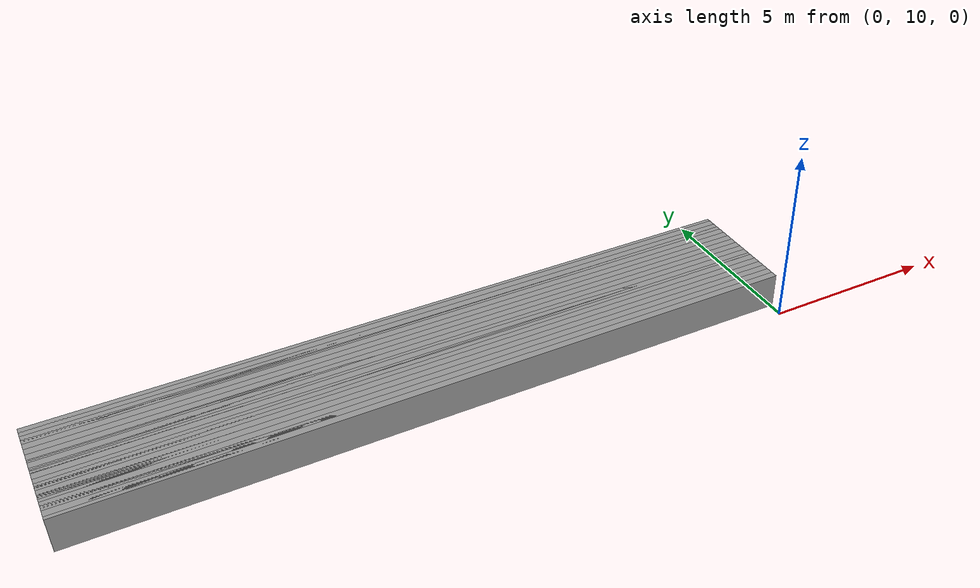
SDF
<sdf version="1.6">
 <world name="GridMap">
  <model name="GridMap">
   <link name="Wall_(101.5,100.0)">
    <collision name="Wall_(101.5,100.0)_Collision">
     <geometry><box><size>19.5 0.2 1.0</size></box></geometry>
     <pose>-10.15 10.0 0.5 0 -0 0</pose>
    </collision>
    <visual name="Wall_(101.5,100.0)_Visual">
     <geometry><box><size>19.5 0.2 1.0</size></box></geometry>
     <pose>-10.15 10.0 0.5 0 -0 0</pose>
     <material>
      <script><uri>file://media/materials/scripts/gazebo.material</uri><name>Gazebo/Grey</name></script>
      <ambient>1 1 1 1</ambient>
     </material>
     <meta><layer>0</layer></meta>
    </visual>
    <pose>0 0 0.5 0 -0 0</pose>
   </link>
   <link name="Wall_(101.5,101.0)">
    <collision name="Wall_(101.5,101.0)_Collision">
     <geometry><box><size>19.5 0.2 1.0</size></box></geometry>
     <pose>-10.15 10.100000000000001 0.5 0 -0 0</pose>
    </collision>
    <visual name="Wall_(101.5,101.0)_Visual">
     <geometry><box><size>19.5 0.2 1.0</size></box></geometry>
     <pose>-10.15 10.100000000000001 0.5 0 -0 0</pose>
     <material>
      <script><uri>file://media/materials/scripts/gazebo.material</uri><name>Gazebo/Grey</name></script>
      <ambient>1 1 1 1</ambient>
     </material>
     <meta><layer>0</layer></meta>
    </visual>
    <pose>0 0 0.5 0 -0 0</pose>
   </link>
   <link name="Wall_(101.5,102.0)">
    <collision name="Wall_(101.5,102.0)_Collision">
     <geometry><box><size>19.5 0.2 1.0</size></box></geometry>
     <pose>-10.15 10.200000000000001 0.5 0 -0 0</pose>
    </collision>
    <visual name="Wall_(101.5,102.0)_Visual">
     <geometry><box><size>19.5 0.2 1.0</size></box></geometry>
     <pose>-10.15 10.200000000000001 0.5 0 -0 0</pose>
     <material>
      <script><uri>file://media/materials/scripts/gazebo.material</uri><name>Gazebo/Grey</name></script>
      <ambient>1 1 1 1</ambient>
     </material>
     <meta><layer>0</layer></meta>
    </visual>
    <pose>0 0 0.5 0 -0 0</pose>
   </link>
   <link name="Wall_(101.5,103.0)">
    <collision name="Wall_(101.5,103.0)_Collision">
     <geometry><box><size>19.5 0.2 1.0</size></box></geometry>
     <pose>-10.15 10.3 0.5 0 -0 0</pose>
    </collision>
    <visual name="Wall_(101.5,103.0)_Visual">
     <geometry><box><size>19.5 0.2 1.0</size></box></geometry>
     <pose>-10.15 10.3 0.5 0 -0 0</pose>
     <material>
      <script><uri>file://media/materials/scripts/gazebo.material</uri><name>Gazebo/Grey</name></script>
      <ambient>1 1 1 1</ambient>
     </material>
     <meta><layer>0</layer></meta>
    </visual>
    <pose>0 0 0.5 0 -0 0</pose>
   </link>
   <link name="Wall_(101.5,104.0)">
    <collision name="Wall_(101.5,104.0)_Collision">
     <geometry><box><size>19.5 0.2 1.0</size></box></geometry>
     <pose>-10.15 10.4 0.5 0 -0 0</pose>
    </collision>
    <visual name="Wall_(101.5,104.0)_Visual">
     <geometry><box><size>19.5 0.2 1.0</size></box></geometry>
     <pose>-10.15 10.4 0.5 0 -0 0</pose>
     <material>
      <script><uri>file://media/materials/scripts/gazebo.material</uri><name>Gazebo/Grey</name></script>
      <ambient>1 1 1 1</ambient>
     </material>
     <meta><layer>0</layer></meta>
    </visual>
    <pose>0 0 0.5 0 -0 0</pose>
   </link>
   <link name="Wall_(101.5,105.0)">
    <collision name="Wall_(101.5,105.0)_Collision">
     <geometry><box><size>19.5 0.2 1.0</size></box></geometry>
     <pose>-10.15 10.5 0.5 0 -0 0</pose>
    </collision>
    <visual name="Wall_(101.5,105.0)_Visual">
     <geometry><box><size>19.5 0.2 1.0</size></box></geometry>
     <pose>-10.15 10.5 0.5 0 -0 0</pose>
     <material>
      <script><uri>file://media/materials/scripts/gazebo.material</uri><name>Gazebo/Grey</name></script>
      <ambient>1 1 1 1</ambient>
     </material>
     <meta><layer>0</layer></meta>
    </visual>
    <pose>0 0 0.5 0 -0 0</pose>
   </link>
   <link name="Wall_(101.5,106.0)">
    <collision name="Wall_(101.5,106.0)_Collision">
     <geometry><box><size>19.5 0.2 1.0</size></box></geometry>
     <pose>-10.15 10.600000000000001 0.5 0 -0 0</pose>
    </collision>
    <visual name="Wall_(101.5,106.0)_Visual">
     <geometry><box><size>19.5 0.2 1.0</size></box></geometry>
     <pose>-10.15 10.600000000000001 0.5 0 -0 0</pose>
     <material>
      <script><uri>file://media/materials/scripts/gazebo.material</uri><name>Gazebo/Grey</name></script>
      <ambient>1 1 1 1</ambient>
     </material>
     <meta><layer>0</layer></meta>
    </visual>
    <pose>0 0 0.5 0 -0 0</pose>
   </link>
   <link name="Wall_(101.5,107.0)">
    <collision name="Wall_(101.5,107.0)_Collision">
     <geometry><box><size>19.5 0.2 1.0</size></box></geometry>
     <pose>-10.15 10.700000000000001 0.5 0 -0 0</pose>
    </collision>
    <visual name="Wall_(101.5,107.0)_Visual">
     <geometry><box><size>19.5 0.2 1.0</size></box></geometry>
     <pose>-10.15 10.700000000000001 0.5 0 -0 0</pose>
     <material>
      <script><uri>file://media/materials/scripts/gazebo.material</uri><name>Gazebo/Grey</name></script>
      <ambient>1 1 1 1</ambient>
     </material>
     <meta><layer>0</layer></meta>
    </visual>
    <pose>0 0 0.5 0 -0 0</pose>
   </link>
   <link name="Wall_(101.5,108.0)">
    <collision name="Wall_(101.5,108.0)_Collision">
     <geometry><box><size>19.5 0.2 1.0</size></box></geometry>
     <pose>-10.15 10.8 0.5 0 -0 0</pose>
    </collision>
    <visual name="Wall_(101.5,108.0)_Visual">
     <geometry><box><size>19.5 0.2 1.0</size></box></geometry>
     <pose>-10.15 10.8 0.5 0 -0 0</pose>
     <material>
      <script><uri>file://media/materials/scripts/gazebo.material</uri><name>Gazebo/Grey</name></script>
      <ambient>1 1 1 1</ambient>
     </material>
     <meta><layer>0</layer></meta>
    </visual>
    <pose>0 0 0.5 0 -0 0</pose>
   </link>
   <link name="Wall_(101.5,109.0)">
    <collision name="Wall_(101.5,109.0)_Collision">
     <geometry><box><size>19.5 0.2 1.0</size></box></geometry>
     <pose>-10.15 10.9 0.5 0 -0 0</pose>
    </collision>
    <visual name="Wall_(101.5,109.0)_Visual">
     <geometry><box><size>19.5 0.2 1.0</size></box></geometry>
     <pose>-10.15 10.9 0.5 0 -0 0</pose>
     <material>
      <script><uri>file://media/materials/scripts/gazebo.material</uri><name>Gazebo/Grey</name></script>
      <ambient>1 1 1 1</ambient>
     </material>
     <meta><layer>0</layer></meta>
    </visual>
    <pose>0 0 0.5 0 -0 0</pose>
   </link>
   <link name="Wall_(101.5,110.0)">
    <collision name="Wall_(101.5,110.0)_Collision">
     <geometry><box><size>19.5 0.2 1.0</size></box></geometry>
     <pose>-10.15 11.0 0.5 0 -0 0</pose>
    </collision>
    <visual name="Wall_(101.5,110.0)_Visual">
     <geometry><box><size>19.5 0.2 1.0</size></box></geometry>
     <pose>-10.15 11.0 0.5 0 -0 0</pose>
     <material>
      <script><uri>file://media/materials/scripts/gazebo.material</uri><name>Gazebo/Grey</name></script>
      <ambient>1 1 1 1</ambient>
     </material>
     <meta><layer>0</layer></meta>
    </visual>
    <pose>0 0 0.5 0 -0 0</pose>
   </link>
   <link name="Wall_(101.5,111.0)">
    <collision name="Wall_(101.5,111.0)_Collision">
     <geometry><box><size>19.5 0.2 1.0</size></box></geometry>
     <pose>-10.15 11.100000000000001 0.5 0 -0 0</pose>
    </collision>
    <visual name="Wall_(101.5,111.0)_Visual">
     <geometry><box><size>19.5 0.2 1.0</size></box></geometry>
     <pose>-10.15 11.100000000000001 0.5 0 -0 0</pose>
     <material>
      <script><uri>file://media/materials/scripts/gazebo.material</uri><name>Gazebo/Grey</name></script>
      <ambient>1 1 1 1</ambient>
     </material>
     <meta><layer>0</layer></meta>
    </visual>
    <pose>0 0 0.5 0 -0 0</pose>
   </link>
   <link name="Wall_(101.5,112.0)">
    <collision name="Wall_(101.5,112.0)_Collision">
     <geometry><box><size>19.5 0.2 1.0</size></box></geometry>
     <pose>-10.15 11.200000000000001 0.5 0 -0 0</pose>
    </collision>
    <visual name="Wall_(101.5,112.0)_Visual">
     <geometry><box><size>19.5 0.2 1.0</size></box></geometry>
     <pose>-10.15 11.200000000000001 0.5 0 -0 0</pose>
     <material>
      <script><uri>file://media/materials/scripts/gazebo.material</uri><name>Gazebo/Grey</name></script>
      <ambient>1 1 1 1</ambient>
     </material>
     <meta><layer>0</layer></meta>
    </visual>
    <pose>0 0 0.5 0 -0 0</pose>
   </link>
   <link name="Wall_(101.5,113.0)">
    <collision name="Wall_(101.5,113.0)_Collision">
     <geometry><box><size>19.5 0.2 1.0</size></box></geometry>
     <pose>-10.15 11.3 0.5 0 -0 0</pose>
    </collision>
    <visual name="Wall_(101.5,113.0)_Visual">
     <geometry><box><size>19.5 0.2 1.0</size></box></geometry>
     <pose>-10.15 11.3 0.5 0 -0 0</pose>
     <material>
      <script><uri>file://media/materials/scripts/gazebo.material</uri><name>Gazebo/Grey</name></script>
      <ambient>1 1 1 1</ambient>
     </material>
     <meta><layer>0</layer></meta>
    </visual>
    <pose>0 0 0.5 0 -0 0</pose>
   </link>
   <link name="Wall_(101.5,114.0)">
    <collision name="Wall_(101.5,114.0)_Collision">
     <geometry><box><size>19.5 0.2 1.0</size></box></geometry>
     <pose>-10.15 11.4 0.5 0 -0 0</pose>
    </collision>
    <visual name="Wall_(101.5,114.0)_Visual">
     <geometry><box><size>19.5 0.2 1.0</size></box></geometry>
     <pose>-10.15 11.4 0.5 0 -0 0</pose>
     <material>
      <script><uri>file://media/materials/scripts/gazebo.material</uri><name>Gazebo/Grey</name></script>
      <ambient>1 1 1 1</ambient>
     </material>
     <meta><layer>0</layer></meta>
    </visual>
    <pose>0 0 0.5 0 -0 0</pose>
   </link>
   <link name="Wall_(101.5,115.0)">
    <collision name="Wall_(101.5,115.0)_Collision">
     <geometry><box><size>19.5 0.2 1.0</size></box></geometry>
     <pose>-10.15 11.5 0.5 0 -0 0</pose>
    </collision>
    <visual name="Wall_(101.5,115.0)_Visual">
     <geometry><box><size>19.5 0.2 1.0</size></box></geometry>
     <pose>-10.15 11.5 0.5 0 -0 0</pose>
     <material>
      <script><uri>file://media/materials/scripts/gazebo.material</uri><name>Gazebo/Grey</name></script>
      <ambient>1 1 1 1</ambient>
     </material>
     <meta><layer>0</layer></meta>
    </visual>
    <pose>0 0 0.5 0 -0 0</pose>
   </link>
   <link name="Wall_(101.5,116.0)">
    <collision name="Wall_(101.5,116.0)_Collision">
     <geometry><box><size>19.5 0.2 1.0</size></box></geometry>
     <pose>-10.15 11.600000000000001 0.5 0 -0 0</pose>
    </collision>
    <visual name="Wall_(101.5,116.0)_Visual">
     <geometry><box><size>19.5 0.2 1.0</size></box></geometry>
     <pose>-10.15 11.600000000000001 0.5 0 -0 0</pose>
     <material>
      <script><uri>file://media/materials/scripts/gazebo.material</uri><name>Gazebo/Grey</name></script>
      <ambient>1 1 1 1</ambient>
     </material>
     <meta><layer>0</layer></meta>
    </visual>
    <pose>0 0 0.5 0 -0 0</pose>
   </link>
   <link name="Wall_(101.5,117.0)">
    <collision name="Wall_(101.5,117.0)_Collision">
     <geometry><box><size>19.5 0.2 1.0</size></box></geometry>
     <pose>-10.15 11.700000000000001 0.5 0 -0 0</pose>
    </collision>
    <visual name="Wall_(101.5,117.0)_Visual">
     <geometry><box><size>19.5 0.2 1.0</size></box></geometry>
     <pose>-10.15 11.700000000000001 0.5 0 -0 0</pose>
     <material>
      <script><uri>file://media/materials/scripts/gazebo.material</uri><name>Gazebo/Grey</name></script>
      <ambient>1 1 1 1</ambient>
     </material>
     <meta><layer>0</layer></meta>
    </visual>
    <pose>0 0 0.5 0 -0 0</pose>
   </link>
   <link name="Wall_(101.5,118.0)">
    <collision name="Wall_(101.5,118.0)_Collision">
     <geometry><box><size>19.5 0.2 1.0</size></box></geometry>
     <pose>-10.15 11.8 0.5 0 -0 0</pose>
    </collision>
    <visual name="Wall_(101.5,118.0)_Visual">
     <geometry><box><size>19.5 0.2 1.0</size></box></geometry>
     <pose>-10.15 11.8 0.5 0 -0 0</pose>
     <material>
      <script><uri>file://media/materials/scripts/gazebo.material</uri><name>Gazebo/Grey</name></script>
      <ambient>1 1 1 1</ambient>
     </material>
     <meta><layer>0</layer></meta>
    </visual>
    <pose>0 0 0.5 0 -0 0</pose>
   </link>
   <link name="Wall_(101.5,119.0)">
    <collision name="Wall_(101.5,119.0)_Collision">
     <geometry><box><size>19.5 0.2 1.0</size></box></geometry>
     <pose>-10.15 11.9 0.5 0 -0 0</pose>
    </collision>
    <visual name="Wall_(101.5,119.0)_Visual">
     <geometry><box><size>19.5 0.2 1.0</size></box></geometry>
     <pose>-10.15 11.9 0.5 0 -0 0</pose>
     <material>
      <script><uri>file://media/materials/scripts/gazebo.material</uri><name>Gazebo/Grey</name></script>
      <ambient>1 1 1 1</ambient>
     </material>
     <meta><layer>0</layer></meta>
    </visual>
    <pose>0 0 0.5 0 -0 0</pose>
   </link>
   <link name="Wall_(101.5,120.0)">
    <collision name="Wall_(101.5,120.0)_Collision">
     <geometry><box><size>19.5 0.2 1.0</size></box></geometry>
     <pose>-10.15 12.0 0.5 0 -0 0</pose>
    </collision>
    <visual name="Wall_(101.5,120.0)_Visual">
     <geometry><box><size>19.5 0.2 1.0</size></box></geometry>
     <pose>-10.15 12.0 0.5 0 -0 0</pose>
     <material>
      <script><uri>file://media/materials/scripts/gazebo.material</uri><name>Gazebo/Grey</name></script>
      <ambient>1 1 1 1</ambient>
     </material>
     <meta><layer>0</layer></meta>
    </visual>
    <pose>0 0 0.5 0 -0 0</pose>
   </link>
   <link name="Wall_(101.5,121.0)">
    <collision name="Wall_(101.5,121.0)_Collision">
     <geometry><box><size>19.5 0.2 1.0</size></box></geometry>
     <pose>-10.15 12.100000000000001 0.5 0 -0 0</pose>
    </collision>
    <visual name="Wall_(101.5,121.0)_Visual">
     <geometry><box><size>19.5 0.2 1.0</size></box></geometry>
     <pose>-10.15 12.100000000000001 0.5 0 -0 0</pose>
     <material>
      <script><uri>file://media/materials/scripts/gazebo.material</uri><name>Gazebo/Grey</name></script>
      <ambient>1 1 1 1</ambient>
     </material>
     <meta><layer>0</layer></meta>
    </visual>
    <pose>0 0 0.5 0 -0 0</pose>
   </link>
   <link name="Wall_(101.5,122.0)">
    <collision name="Wall_(101.5,122.0)_Collision">
     <geometry><box><size>19.5 0.2 1.0</size></box></geometry>
     <pose>-10.15 12.200000000000001 0.5 0 -0 0</pose>
    </collision>
    <visual name="Wall_(101.5,122.0)_Visual">
     <geometry><box><size>19.5 0.2 1.0</size></box></geometry>
     <pose>-10.15 12.200000000000001 0.5 0 -0 0</pose>
     <material>
      <script><uri>file://media/materials/scripts/gazebo.material</uri><name>Gazebo/Grey</name></script>
      <ambient>1 1 1 1</ambient>
     </material>
     <meta><layer>0</layer></meta>
    </visual>
    <pose>0 0 0.5 0 -0 0</pose>
   </link>
   <link name="Wall_(101.5,123.0)">
    <collision name="Wall_(101.5,123.0)_Collision">
     <geometry><box><size>19.5 0.2 1.0</size></box></geometry>
     <pose>-10.15 12.3 0.5 0 -0 0</pose>
    </collision>
    <visual name="Wall_(101.5,123.0)_Visual">
     <geometry><box><size>19.5 0.2 1.0</size></box></geometry>
     <pose>-10.15 12.3 0.5 0 -0 0</pose>
     <material>
      <script><uri>file://media/materials/scripts/gazebo.material</uri><name>Gazebo/Grey</name></script>
      <ambient>1 1 1 1</ambient>
     </material>
     <meta><layer>0</layer></meta>
    </visual>
    <pose>0 0 0.5 0 -0 0</pose>
   </link>
   <link name="Wall_(101.5,124.0)">
    <collision name="Wall_(101.5,124.0)_Collision">
     <geometry><box><size>19.5 0.2 1.0</size></box></geometry>
     <pose>-10.15 12.4 0.5 0 -0 0</pose>
    </collision>
    <visual name="Wall_(101.5,124.0)_Visual">
     <geometry><box><size>19.5 0.2 1.0</size></box></geometry>
     <pose>-10.15 12.4 0.5 0 -0 0</pose>
     <material>
      <script><uri>file://media/materials/scripts/gazebo.material</uri><name>Gazebo/Grey</name></script>
      <ambient>1 1 1 1</ambient>
     </material>
     <meta><layer>0</layer></meta>
    </visual>
    <pose>0 0 0.5 0 -0 0</pose>
   </link>
   <link name="Wall_(101.5,125.0)">
    <collision name="Wall_(101.5,125.0)_Collision">
     <geometry><box><size>19.5 0.2 1.0</size></box></geometry>
     <pose>-10.15 12.5 0.5 0 -0 0</pose>
    </collision>
    <visual name="Wall_(101.5,125.0)_Visual">
     <geometry><box><size>19.5 0.2 1.0</size></box></geometry>
     <pose>-10.15 12.5 0.5 0 -0 0</pose>
     <material>
      <script><uri>file://media/materials/scripts/gazebo.material</uri><name>Gazebo/Grey</name></script>
      <ambient>1 1 1 1</ambient>
     </material>
     <meta><layer>0</layer></meta>
    </visual>
    <pose>0 0 0.5 0 -0 0</pose>
   </link>
   <link name="Wall_(101.5,126.0)">
    <collision name="Wall_(101.5,126.0)_Collision">
     <geometry><box><size>19.5 0.2 1.0</size></box></geometry>
     <pose>-10.15 12.600000000000001 0.5 0 -0 0</pose>
    </collision>
    <visual name="Wall_(101.5,126.0)_Visual">
     <geometry><box><size>19.5 0.2 1.0</size></box></geometry>
     <pose>-10.15 12.600000000000001 0.5 0 -0 0</pose>
     <material>
      <script><uri>file://media/materials/scripts/gazebo.material</uri><name>Gazebo/Grey</name></script>
      <ambient>1 1 1 1</ambient>
     </material>
     <meta><layer>0</layer></meta>
    </visual>
    <pose>0 0 0.5 0 -0 0</pose>
   </link>
   <link name="Wall_(101.5,127.0)">
    <collision name="Wall_(101.5,127.0)_Collision">
     <geometry><box><size>19.5 0.2 1.0</size></box></geometry>
     <pose>-10.15 12.700000000000001 0.5 0 -0 0</pose>
    </collision>
    <visual name="Wall_(101.5,127.0)_Visual">
     <geometry><box><size>19.5 0.2 1.0</size></box></geometry>
     <pose>-10.15 12.700000000000001 0.5 0 -0 0</pose>
     <material>
      <script><uri>file://media/materials/scripts/gazebo.material</uri><name>Gazebo/Grey</name></script>
      <ambient>1 1 1 1</ambient>
     </material>
     <meta><layer>0</layer></meta>
    </visual>
    <pose>0 0 0.5 0 -0 0</pose>
   </link>
   <link name="Wall_(101.5,128.0)">
    <collision name="Wall_(101.5,128.0)_Collision">
     <geometry><box><size>19.5 0.2 1.0</size></box></geometry>
     <pose>-10.15 12.8 0.5 0 -0 0</pose>
    </collision>
    <visual name="Wall_(101.5,128.0)_Visual">
     <geometry><box><size>19.5 0.2 1.0</size></box></geometry>
     <pose>-10.15 12.8 0.5 0 -0 0</pose>
     <material>
      <script><uri>file://media/materials/scripts/gazebo.material</uri><name>Gazebo/Grey</name></script>
      <ambient>1 1 1 1</ambient>
     </material>
     <meta><layer>0</layer></meta>
    </visual>
    <pose>0 0 0.5 0 -0 0</pose>
   </link>
   <link name="Wall_(101.5,129.0)">
    <collision name="Wall_(101.5,129.0)_Collision">
     <geometry><box><size>19.5 0.2 1.0</size></box></geometry>
     <pose>-10.15 12.9 0.5 0 -0 0</pose>
    </collision>
    <visual name="Wall_(101.5,129.0)_Visual">
     <geometry><box><size>19.5 0.2 1.0</size></box></geometry>
     <pose>-10.15 12.9 0.5 0 -0 0</pose>
     <material>
      <script><uri>file://media/materials/scripts/gazebo.material</uri><name>Gazebo/Grey</name></script>
      <ambient>1 1 1 1</ambient>
     </material>
     <meta><layer>0</layer></meta>
    </visual>
    <pose>0 0 0.5 0 -0 0</pose>
   </link>
   <link name="Wall_(101.5,130.0)">
    <collision name="Wall_(101.5,130.0)_Collision">
     <geometry><box><size>19.5 0.2 1.0</size></box></geometry>
     <pose>-10.15 13.0 0.5 0 -0 0</pose>
    </collision>
    <visual name="Wall_(101.5,130.0)_Visual">
     <geometry><box><size>19.5 0.2 1.0</size></box></geometry>
     <pose>-10.15 13.0 0.5 0 -0 0</pose>
     <material>
      <script><uri>file://media/materials/scripts/gazebo.material</uri><name>Gazebo/Grey</name></script>
      <ambient>1 1 1 1</ambient>
     </material>
     <meta><layer>0</layer></meta>
    </visual>
    <pose>0 0 0.5 0 -0 0</pose>
   </link>
   <link name="Wall_(101.5,131.0)">
    <collision name="Wall_(101.5,131.0)_Collision">
     <geometry><box><size>19.5 0.2 1.0</size></box></geometry>
     <pose>-10.15 13.100000000000001 0.5 0 -0 0</pose>
    </collision>
    <visual name="Wall_(101.5,131.0)_Visual">
     <geometry><box><size>19.5 0.2 1.0</size></box></geometry>
     <pose>-10.15 13.100000000000001 0.5 0 -0 0</pose>
     <material>
      <script><uri>file://media/materials/scripts/gazebo.material</uri><name>Gazebo/Grey</name></script>
      <ambient>1 1 1 1</ambient>
     </material>
     <meta><layer>0</layer></meta>
    </visual>
    <pose>0 0 0.5 0 -0 0</pose>
   </link>
   <static>1</static>
  </model>
 </world>
</sdf>
